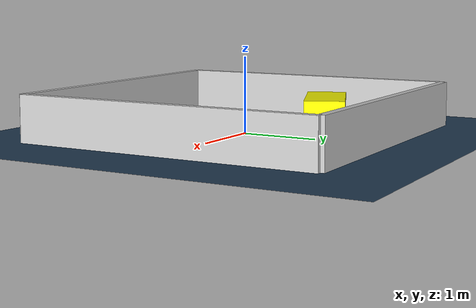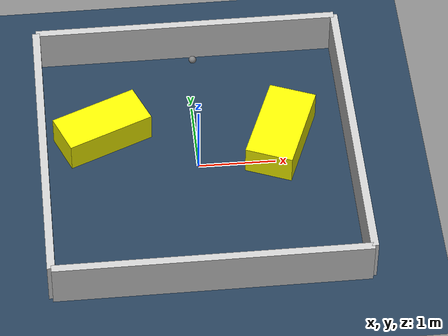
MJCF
<?xml version="1.0" ?>
<mujoco model="generated_environment">
  <option timestep="0.01" integrator="RK4" cone="elliptic"/>
  <default>
    <geom density="1"/>
  </default>
  <asset>
    <texture builtin="gradient" height="3072" rgb1="0.3 0.5 0.7" rgb2="0 0 0" type="skybox" width="512"/>
    <texture builtin="checker" height="300" mark="edge" markrgb="0.8 0.8 0.8" name="groundplane" rgb1="0.2 0.3 0.4" rgb2="0.1 0.2 0.3" type="2d" width="300"/>
    <material name="groundplane" reflectance="0.2" texrepeat="5 5" texture="groundplane" texuniform="true"/>
    <material name="robot" rgba="0.0 1.0 0.0 1"/>
  </asset>
  <worldbody>
    <light dir="0 0 -1" directional="true" pos="0 0 1.5"/>
    <geom condim="4" friction="1.0 0.005 0.001" material="groundplane" name="floor" size="0 0 0.05" type="plane"/>
    <body name="walls">
      <geom name="wall_1" condim="4" pos="-2.0 0.0 0.3" rgba="0.800000011920929 0.800000011920929 0.800000011920929 1.0" size="0.05 2.0 0.3" type="box"/>
      <geom name="wall_2" condim="4" pos="2.0 0.0 0.3" rgba="0.800000011920929 0.800000011920929 0.800000011920929 1.0" size="0.05 2.0 0.3" type="box"/>
      <geom name="wall_3" condim="4" pos="0.0 -2.0 0.3" rgba="0.800000011920929 0.800000011920929 0.800000011920929 1.0" size="2.0 0.05 0.3" type="box"/>
      <geom name="wall_4" condim="4" pos="0.0 2.0 0.3" rgba="0.800000011920929 0.800000011920929 0.800000011920929 1.0" size="2.0 0.05 0.3" type="box"/>
    </body>
    <body name="robot">
      <joint name="joint_x" type="slide" pos="0 0 0" axis="1 0 0"/>
      <joint name="joint_y" type="slide" pos="0 0 0" axis="0 1 0"/>
      <geom name="robot" type="sphere" pos="0.07099626339337961 1.7159075138734203 0.2" size="0.05" mass="5." friction="1.0 0.005 0.0001" condim="4"/>
      <site name="sensor_ball"/>
    </body>
    <body name="obstacle_1_movable">
      <geom name="obstacle_1_movable" condim="4" pos="-1.213546168013053 0.5864959027819476 0.2" euler="0 0 292.84670095102354" friction="1.0 0.005 0.001" rgba="1 1 0 1" size="0.2729488231698858 0.5839215205030666 0.2" type="box" mass="0.1"/>
      <joint type="free"/>
    </body>
    <body name="obstacle_2_movable">
      <geom name="obstacle_2_movable" condim="4" pos="1.1032485025343386 0.31137716796634063 0.2" euler="0 0 158.227196962037" friction="1.0 0.005 0.001" rgba="1 1 0 1" size="0.31214917404064235 0.5952863079988413 0.2" type="box" mass="0.1"/>
      <joint type="free"/>
    </body>
  </worldbody>
  <actuator>
    <motor name="actuator_x" joint="joint_x" gear="1" ctrlrange="-1 1"/>
    <motor name="actuator_y" joint="joint_y" gear="1" ctrlrange="-1 1"/>
  </actuator>
</mujoco>
